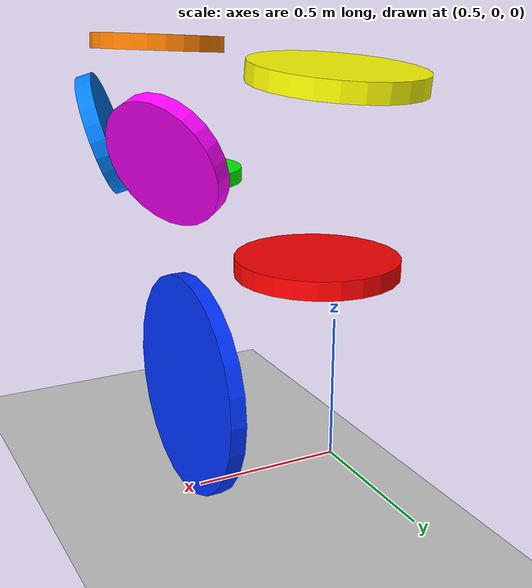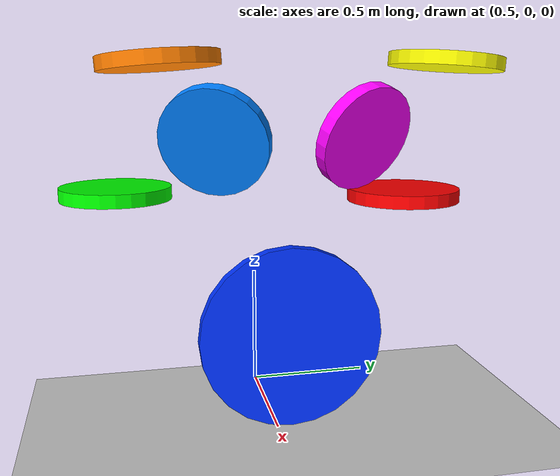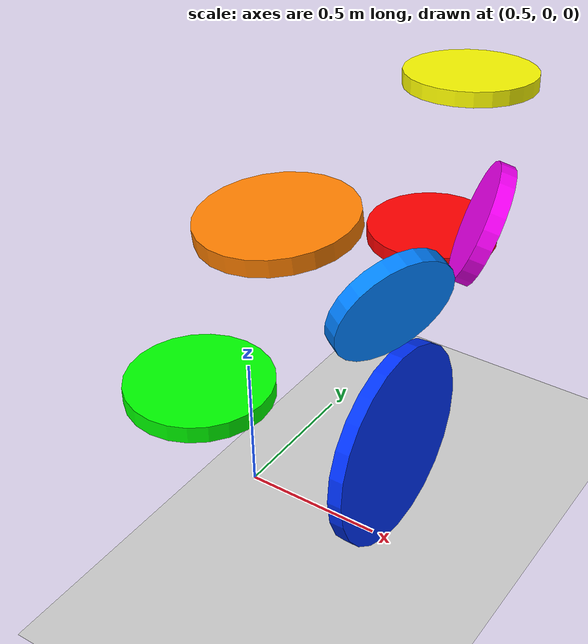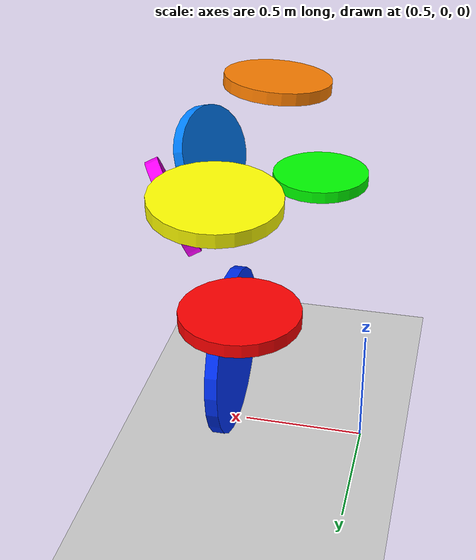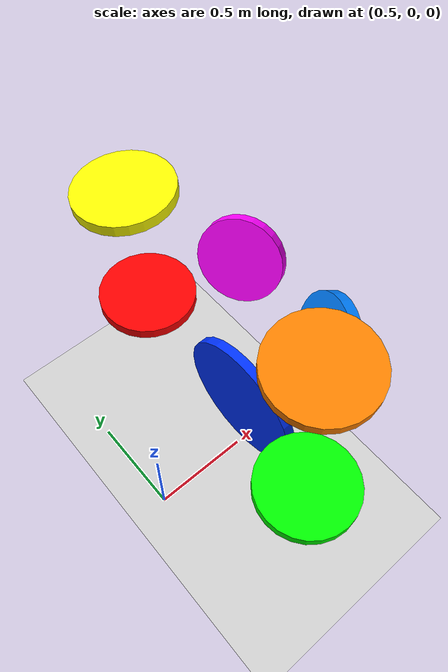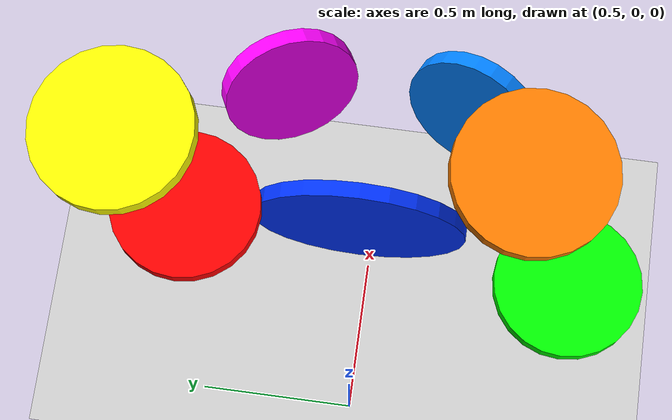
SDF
<sdf version="1.4">
 <world name="default">
  <include><uri>model://ground_plane</uri></include>
  <include><uri>model://sun</uri></include>
  <model name="snare">
   <pose>0.798 -0.582 0.922 0 0 0</pose>
   <static>true</static>
   <link name="body">
    <visual name="visual">
     <geometry><cylinder><length>0.050</length><radius>0.210</radius></cylinder></geometry>
     <material>
      <ambient>0 1 0 1</ambient>
      <diffuse>0 1 0 1</diffuse>
      <specular>0.1 0.1 0.1 1</specular>
      <emissive>0 0 0 0</emissive>
     </material>
    </visual>
    <collision name="collision">
     <geometry><cylinder><length>0.055</length><radius>0.210</radius></cylinder></geometry>
    </collision>
   </link>
  </model>
  <model name="hihat">
   <pose>0.892 0.531 0.895 0 0 0</pose>
   <static>true</static>
   <link name="body">
    <visual name="visual">
     <geometry><cylinder><length>0.050</length><radius>0.220</radius></cylinder></geometry>
     <material>
      <ambient>1 0 0 1</ambient>
      <diffuse>1 0 0 1</diffuse>
      <specular>0.1 0.1 0.1 1</specular>
      <emissive>0 0 0 0</emissive>
     </material>
    </visual>
    <collision name="collision">
     <geometry><cylinder><length>0.055</length><radius>0.220</radius></cylinder></geometry>
    </collision>
   </link>
  </model>
  <model name="cymbal1">
   <pose>0.932 0.671 1.404 -0.078 -0.041 0.003</pose>
   <static>true</static>
   <link name="body">
    <visual name="visual">
     <geometry><cylinder><length>0.050</length><radius>0.220</radius></cylinder></geometry>
     <material>
      <ambient>1 1 0 1</ambient>
      <diffuse>1 1 0 1</diffuse>
      <specular>0.1 0.1 0.1 1</specular>
      <emissive>0 0 0 0</emissive>
     </material>
    </visual>
    <collision name="collision">
     <geometry><cylinder><length>0.055</length><radius>0.220</radius></cylinder></geometry>
    </collision>
   </link>
  </model>
  <model name="cymbal2">
   <pose>0.9567 -0.4134 1.406 0.058748 -0.067061 0.002778</pose>
   <static>true</static>
   <link name="body">
    <visual name="visual">
     <geometry><cylinder><length>0.050</length><radius>0.220</radius></cylinder></geometry>
     <material>
      <ambient>1 0.5 0 1</ambient>
      <diffuse>1 0.5 0 1</diffuse>
      <specular>0.1 0.1 0.1 1</specular>
      <emissive>0 0 0 0</emissive>
     </material>
    </visual>
    <collision name="collision">
     <geometry><cylinder><length>0.055</length><radius>0.220</radius></cylinder></geometry>
    </collision>
   </link>
  </model>
  <model name="tom1">
   <pose>1.204 0.26 1.152 0.26 -1.187 0.176</pose>
   <static>true</static>
   <link name="body">
    <visual name="visual">
     <geometry><cylinder><length>0.050</length><radius>0.190</radius></cylinder></geometry>
     <material>
      <ambient>1 0 1 1</ambient>
      <diffuse>1 0 1 1</diffuse>
      <specular>0.1 0.1 0.1 1</specular>
      <emissive>0 0 0 0</emissive>
     </material>
    </visual>
    <collision name="collision">
     <geometry><cylinder><length>0.055</length><radius>0.190</radius></cylinder></geometry>
    </collision>
   </link>
  </model>
  <model name="tom2">
   <pose>1.201 -0.253 1.147 -0.563 -1.187 0.176</pose>
   <static>true</static>
   <link name="body">
    <visual name="visual">
     <geometry><cylinder><length>0.050</length><radius>0.190</radius></cylinder></geometry>
     <material>
      <ambient>0 0.5 1 1</ambient>
      <diffuse>0 0.5 1 1</diffuse>
      <specular>0.1 0.1 0.1 1</specular>
      <emissive>0 0 0 0</emissive>
     </material>
    </visual>
    <collision name="collision">
     <geometry><cylinder><length>0.055</length><radius>0.190</radius></cylinder></geometry>
    </collision>
   </link>
  </model>
  <model name="bass">
   <pose>1.051 0.041 0.39 3.1416 -1.5708 3.1416</pose>
   <static>true</static>
   <link name="body">
    <visual name="visual">
     <geometry><cylinder><length>0.050</length><radius>0.350</radius></cylinder></geometry>
     <material>
      <ambient>0 0.2 1 1</ambient>
      <diffuse>0 0.2 1 1</diffuse>
      <specular>0.1 0.1 0.1 1</specular>
      <emissive>0 0 0 0</emissive>
     </material>
    </visual>
    <collision name="collision">
     <geometry><cylinder><length>0.055</length><radius>0.350</radius></cylinder></geometry>
    </collision>
   </link>
  </model>
  <physics type="ode">
   <real_time_update_rate>1000.0</real_time_update_rate>
   <gravity>0.0 0.0 -9.81</gravity>
  </physics>
 </world>
</sdf>
